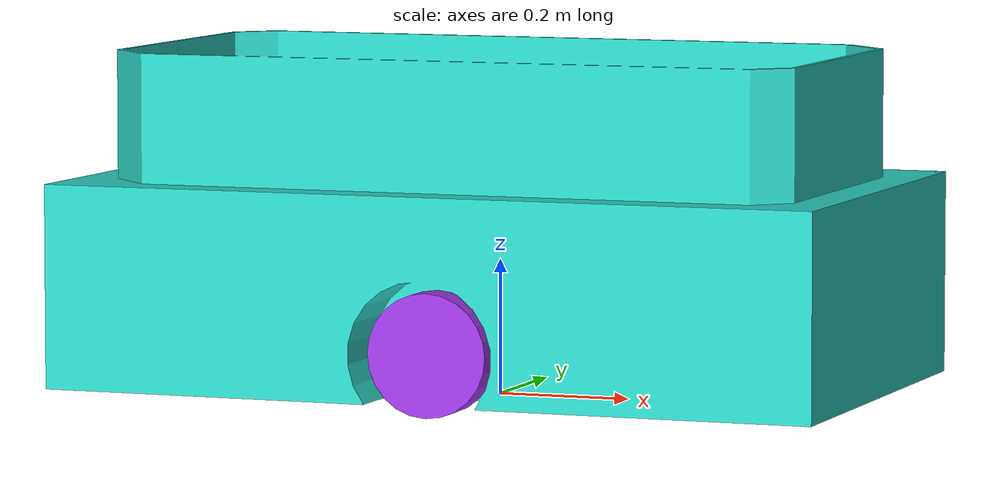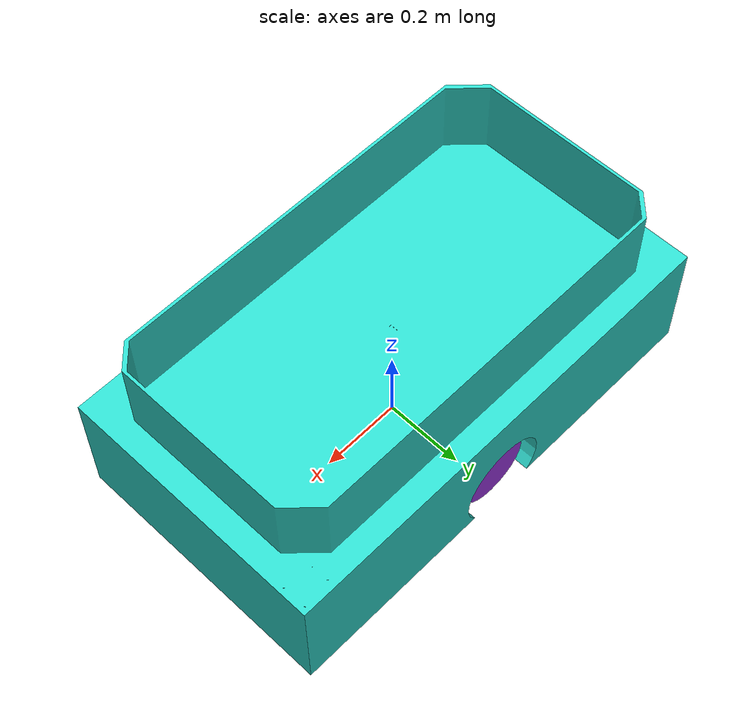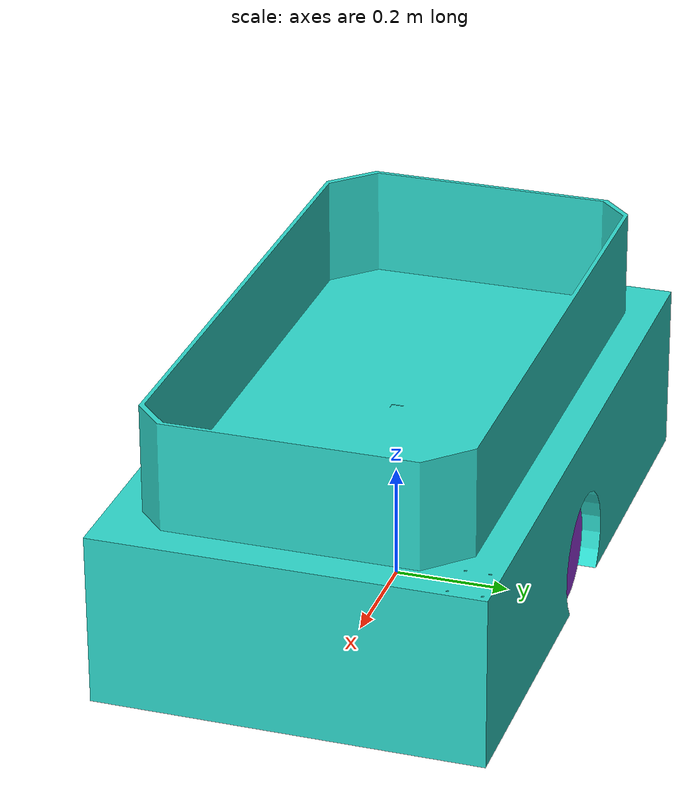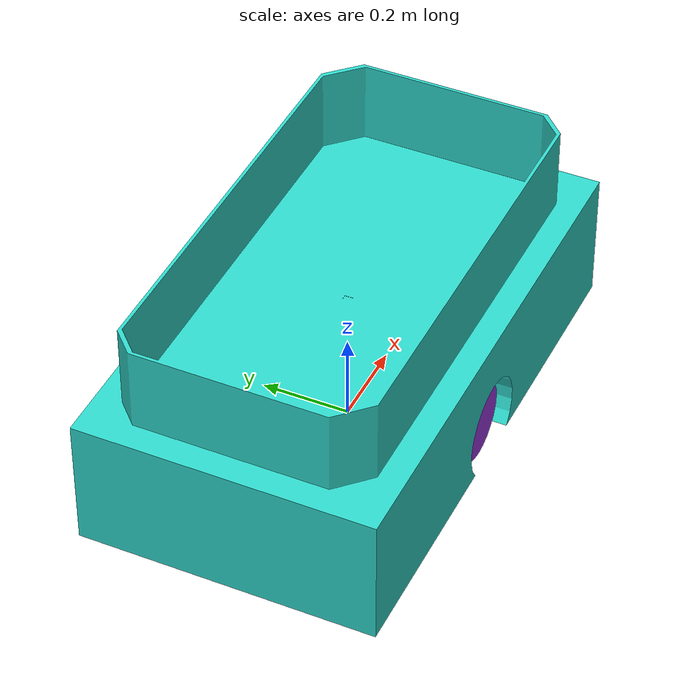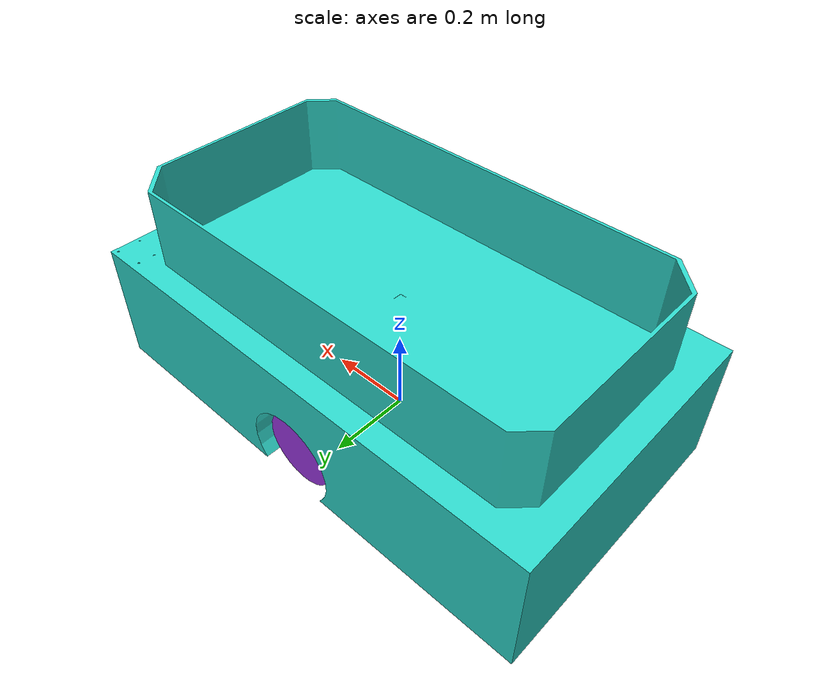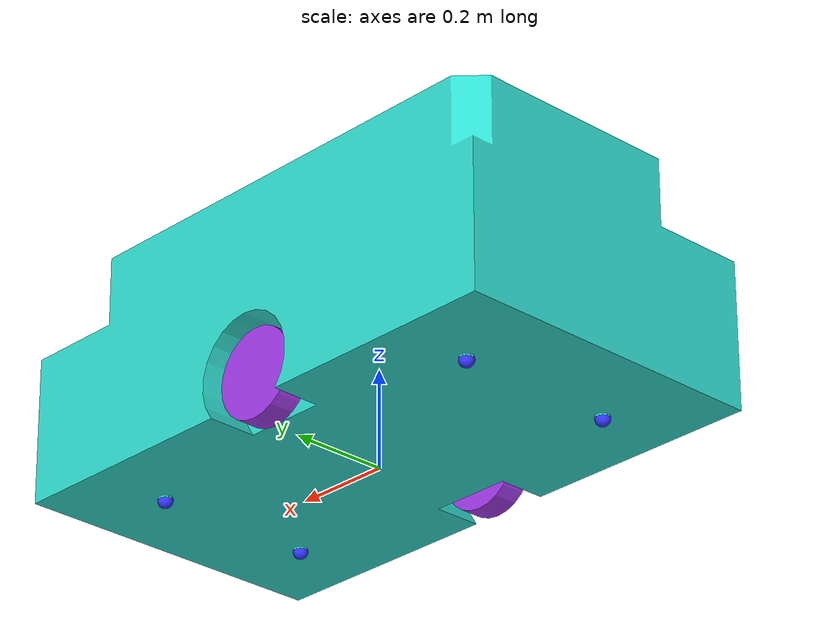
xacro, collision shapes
<?xml version="1.0"?>
<robot xmlns:xacro="http://www.ros.org/wiki/xacro" >

    <xacro:include filename="inertial_macros.xacro"/>

    <material name="white">
        <color rgba="1 1 1 1"/>
    </material>

    <material name="orange">
        <color rgba="1 0.3 0.1 1"/>
    </material>

    <material name="blue">
        <color rgba="0.2 0.2 1 1"/>
    </material>

    <material name="black">
        <color rgba="0 0 0 1"/>
    </material>

    <material name="red">
        <color rgba="1 0 0 1"/>
    </material>

    <material name="green">
        <color rgba="0 1 0 1"/>
    </material>

    <material name="vibrantorange">
        <color rgba="1.0 0.5 0 1"/>
    </material>

    <material name="xanhlo">
        <color rgba="0.18 0.85 0.8 1"/>
    </material>

    <material name="xanhdaquang">
        <color rgba="0.4 0.91 0.22 1"/>
    </material>

    <material name="tim">
        <color rgba="0.62 0.22 0.9 1"/>
    </material>

    <!-- BASE FOOTPRINT -->

    <link name="base_footprint">

    </link>

    <!-- BASE LINK -->

    <joint name="base_joint" type="fixed">
        <parent link="base_footprint"/>
        <child link="base_link"/>
        <origin xyz="0 0 0.09" rpy="0 0 0"/>
    </joint>

    <link name="base_link">
        <visual>
            <origin xyz="0 0 0"/>
            <geometry>
                <mesh filename="package://amr_lan_2_mesh/meshes/base_link.STL"/>
            </geometry>
            <material name="xanhlo"/>
        </visual>
        <collision>
            <origin xyz="0 0 0"/>
            <geometry>
                <mesh filename="package://amr_lan_2_mesh/meshes/base_link.STL"/>
            </geometry>
        </collision>

        <xacro:inertial_box mass="200" x="1.0" y="0.6" z="0.1">
            <origin xyz="0 0 0" rpy="0 0 0"/>
        </xacro:inertial_box>
    </link>

    <gazebo reference="base_link">
        <material>Gazebo/Green</material>
    </gazebo>

    <!-- LEFT WHEEL LINK -->

    <joint name="left_wheel_joint" type="continuous">
        <parent link="base_link"/>
        <child link="left_wheel"/>
        <origin xyz="0 0.28 0" rpy="-${pi/2} 0 0"/>
        <axis xyz="0 0 1"/>
    </joint>

    <link name="left_wheel">
        <visual>
            <origin xyz="0 0 0"/>
            <geometry>
                <mesh filename="package://amr_lan_2_mesh/meshes/left_wheel.STL"/>
            </geometry>
            <material name="tim"/>
        </visual>
        <collision>
            <origin xyz="0 0 0"/>
            <geometry>
                <cylinder radius="0.09" length="0.05"/>
            </geometry>
        </collision>

        <xacro:inertial_cylinder mass = "1.5" length="0.05" radius="0.09">
            <origin xyz="0 0 0" rpy="0 0 0"/>
        </xacro:inertial_cylinder>
    </link>

    <gazebo reference="left_wheel">
        <material>Gazebo/Purple</material>
        <mu1 value="0.4"/>
        <mu2 value="0.4"/>
    </gazebo>

    <!-- RIGHT WHEEL LINK -->

    <joint name="right_wheel_joint" type="continuous">
        <parent link="base_link"/>
        <child link="right_wheel"/>
        <origin xyz="0 -0.28 0" rpy="${pi/2} 0 0"/>
        <axis xyz="0 0 -1"/>
    </joint>

    <link name="right_wheel">
        <visual>
            <origin xyz="0 0 0"/>
            <geometry>
                <mesh filename="package://amr_lan_2_mesh/meshes/right_wheel.STL"/>
            </geometry>
            <material name="tim"/>
        </visual>
        <collision>
            <origin xyz="0 0 0"/>
            <geometry>
                <cylinder radius="0.09" length="0.05"/>
            </geometry>
        </collision>

        <xacro:inertial_cylinder mass = "1.5" length="0.05" radius="0.09">
            <origin xyz="0 0 0" rpy="0 0 0"/>
        </xacro:inertial_cylinder>
    </link>

    <gazebo reference="right_wheel">
        <material>Gazebo/Purple</material>
        <mu1 value="0.4"/>
        <mu2 value="0.4"/>
    </gazebo>

    <!-- CASTER WHEEL RIGHT BEHIND LINK -->

    <joint name="caster_wheel_right_behind_joint" type="fixed">
        <parent link="base_link"/>
        <child link="caster_wheel_right_behind"/>
        <origin xyz="-0.4 -0.17 -0.0749" rpy="0 0 0"/>
    </joint>

    <link name="caster_wheel_right_behind">
        <visual>
            <origin xyz="0 0 0"/>
            <geometry>
                <mesh filename= "package://amr_lan_2_mesh/meshes/caster_wheel_right_behind.STL"/>
            </geometry>
            <material name="blue"/>
        </visual>
        <collision>
            <origin xyz="0 0 0"/>
            <geometry>
                <sphere radius="0.015"/>
            </geometry>
        </collision>

        <xacro:inertial_sphere mass="0.5" radius="0.015">
            <origin xyz="0 0 0" rpy="0 0 0"/>
        </xacro:inertial_sphere>
    </link>

    <gazebo reference="caster_wheel_right_behind">
        <material>Gazebo/Blue</material>
        <mu1 value="0"/>
        <mu2 value="0"/>
    </gazebo>

    <!-- CASTER WHEEL LEFT BEHIND LINK -->

    <joint name="caster_wheel_left_behind_joint" type="fixed">
        <parent link="base_link"/>
        <child link="caster_wheel_left_behind"/>
        <origin xyz="-0.4 0.17 -0.0749" rpy="0 0 0"/>
    </joint>

    <link name="caster_wheel_left_behind">
        <visual>
            <origin xyz="0 0 0"/>
            <geometry>
                <mesh filename="package://amr_lan_2_mesh/meshes/caster_wheel_left_behind.STL"/>
            </geometry>
            <material name="blue"/>
        </visual>
        <collision>
            <origin xyz="0 0 0"/>
            <geometry>
                <sphere radius="0.015"/>
            </geometry>
        </collision>

        <xacro:inertial_sphere mass="0.5" radius="0.015">
            <origin xyz="0 0 0" rpy="0 0 0"/>
        </xacro:inertial_sphere>
    </link>

    <gazebo reference="caster_wheel_left_behind">
        <material>Gazebo/Blue</material>
        <mu1 value="0"/>
        <mu2 value="0"/>
    </gazebo>

    <!-- CASTER WHEEL RIGHT FRONT LINK -->

    <joint name="caster_wheel_right_front_joint" type="fixed">
        <parent link="base_link"/>
        <child link="caster_wheel_right_front"/>
        <origin xyz="0.4 0.17 -0.0749" rpy="0 0 0"/>
    </joint>

    <link name="caster_wheel_right_front">
        <visual>
            <origin xyz="0 0 0"/>
            <geometry>
                <mesh filename="package://amr_lan_2_mesh/meshes/caster_wheel_right_front.STL"/>
            </geometry>
            <material name="blue"/>
        </visual>
        <collision>
            <origin xyz="0 0 0"/>
            <geometry>
                <sphere radius="0.015"/>
            </geometry>
        </collision>

        <xacro:inertial_sphere mass="0.5" radius="0.015">
            <origin xyz="0 0 0" rpy="0 0 0"/>
        </xacro:inertial_sphere>
    </link>

    <gazebo reference="caster_wheel_right_front">
        <material>Gazebo/Blue</material>
        <mu1 value="0"/>
        <mu2 value="0"/>
    </gazebo>

    <!-- CASTER WHEEL LEFT FRONT LINK -->

    <joint name="caster_wheel_left_front_joint" type="fixed">
        <parent link="base_link"/>
        <child link="caster_wheel_left_front"/>
        <origin xyz="0.4 -0.17 -0.0749" rpy="0 0 0"/>
    </joint>

    <link name="caster_wheel_left_front">
        <visual>
            <origin xyz="0 0 0"/>
            <geometry>
                <mesh filename="package://amr_lan_2_mesh/meshes/caster_wheel_left_front.STL"/>
            </geometry>
            <material name="blue"/>
        </visual>
        <collision>
            <origin xyz="0 0 0"/>
            <geometry>
                <sphere radius="0.015"/>
            </geometry>
        </collision>

        <xacro:inertial_sphere mass="0.5" radius="0.015">
            <origin xyz="0 0 0" rpy="0 0 0"/>
        </xacro:inertial_sphere>
    </link>

    <gazebo reference="caster_wheel_left_front">
        <material>Gazebo/Blue</material>
        <mu1 value="0"/>
        <mu2 value="0"/>
    </gazebo>

</robot>
